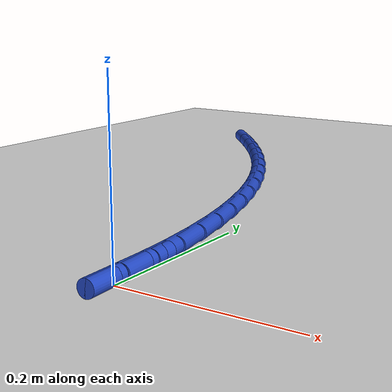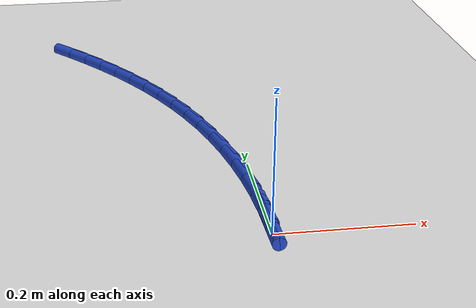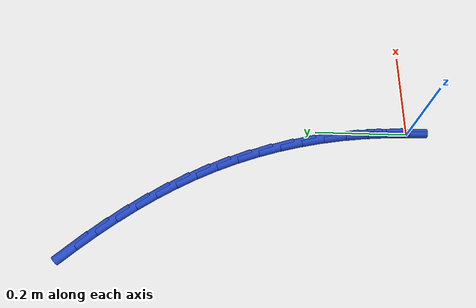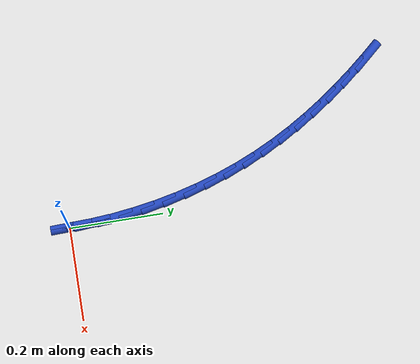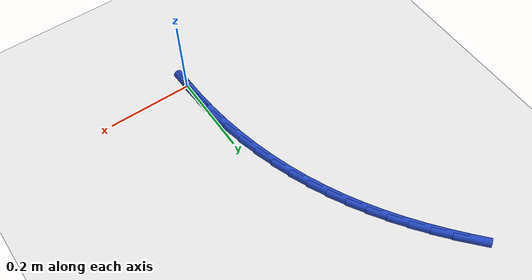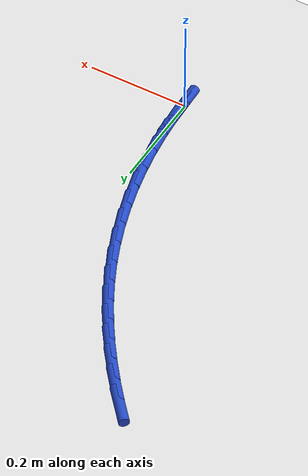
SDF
<sdf version="1.6">
 <world name="default">
  <model name="ground_plane">
   <static>1</static>
   <link name="link">
    <collision name="collision">
     <geometry><plane><normal>0 0 1</normal><size>100 100</size></plane></geometry>
     <surface><friction><ode><mu>100</mu><mu2>50</mu2></ode></friction></surface>
    </collision>
    <visual name="visual">
     <cast_shadows>0</cast_shadows>
     <geometry><plane><normal>0 0 1</normal><size>100 100</size></plane></geometry>
     <material>
      <script><uri>file://media/materials/scripts/gazebo.material</uri><name>Gazebo/WhiteGlow</name></script>
     </material>
    </visual>
   </link>
  </model>
  <model name="line">
   <link name="link_0">
    <pose>1.214306433183765e-17 -1.3877787807814457e-17 0.01 0 1.57 -1.537332562540502</pose>
    <collision name="collision">
     <geometry><cylinder><radius>0.01</radius><length>0.08</length></cylinder></geometry>
    </collision>
    <visual name="visual">
     <material>
      <script><name>Gazebo/Blue</name><uri>file://media/materials/scripts/gazebo.material</uri></script>
     </material>
     <geometry><cylinder><radius>0.01</radius><length>0.08</length></cylinder></geometry>
    </visual>
   </link>
   <link name="link_1">
    <pose>-0.0016422306877398084 0.04905657434838483 0.01 0 1.57 -1.4911456338027516</pose>
    <collision name="collision">
     <geometry><cylinder><radius>0.01</radius><length>0.08</length></cylinder></geometry>
    </collision>
    <visual name="visual">
     <material>
      <script><name>Gazebo/Blue</name><uri>file://media/materials/scripts/gazebo.material</uri></script>
     </material>
     <geometry><cylinder><radius>0.01</radius><length>0.08</length></cylinder></geometry>
    </visual>
   </link>
   <link name="link_2">
    <pose>-0.005535999918573262 0.09783871639620474 0.01 0 1.57 -1.445310106959644</pose>
    <collision name="collision">
     <geometry><cylinder><radius>0.01</radius><length>0.08</length></cylinder></geometry>
    </collision>
    <visual name="visual">
     <material>
      <script><name>Gazebo/Blue</name><uri>file://media/materials/scripts/gazebo.material</uri></script>
     </material>
     <geometry><cylinder><radius>0.01</radius><length>0.08</length></cylinder></geometry>
    </visual>
   </link>
   <link name="link_3">
    <pose>-0.011636482450962628 0.14619803318886382 0.01 0 1.57 -1.3995928769485018</pose>
    <collision name="collision">
     <geometry><cylinder><radius>0.01</radius><length>0.08</length></cylinder></geometry>
    </collision>
    <visual name="visual">
     <material>
      <script><name>Gazebo/Blue</name><uri>file://media/materials/scripts/gazebo.material</uri></script>
     </material>
     <geometry><cylinder><radius>0.01</radius><length>0.08</length></cylinder></geometry>
    </visual>
   </link>
   <link name="link_4">
    <pose>-0.01989885304337018 0.19398613177176616 0.01 0 1.57 -1.3537522992703988</pose>
    <collision name="collision">
     <geometry><cylinder><radius>0.01</radius><length>0.08</length></cylinder></geometry>
    </collision>
    <visual name="visual">
     <material>
      <script><name>Gazebo/Blue</name><uri>file://media/materials/scripts/gazebo.material</uri></script>
     </material>
     <geometry><cylinder><radius>0.01</radius><length>0.08</length></cylinder></geometry>
    </visual>
   </link>
   <link name="link_5">
    <pose>-0.030278286454258174 0.2410546191903157 0.01 0 1.57 -1.307537648069753</pose>
    <collision name="collision">
     <geometry><cylinder><radius>0.01</radius><length>0.08</length></cylinder></geometry>
    </collision>
    <visual name="visual">
     <material>
      <script><name>Gazebo/Blue</name><uri>file://media/materials/scripts/gazebo.material</uri></script>
     </material>
     <geometry><cylinder><radius>0.01</radius><length>0.08</length></cylinder></geometry>
    </visual>
   </link>
   <link name="link_6">
    <pose>-0.042729957442088906 0.28725510248991665 0.01 0 1.57 -1.2606883885619955</pose>
    <collision name="collision">
     <geometry><cylinder><radius>0.01</radius><length>0.08</length></cylinder></geometry>
    </collision>
    <visual name="visual">
     <material>
      <script><name>Gazebo/Blue</name><uri>file://media/materials/scripts/gazebo.material</uri></script>
     </material>
     <geometry><cylinder><radius>0.01</radius><length>0.08</length></cylinder></geometry>
    </visual>
   </link>
   <link name="link_7">
    <pose>-0.05720904076532463 0.3324391887159729 0.01 0 1.57 -1.2129334757176156</pose>
    <collision name="collision">
     <geometry><cylinder><radius>0.01</radius><length>0.08</length></cylinder></geometry>
    </collision>
    <visual name="visual">
     <material>
      <script><name>Gazebo/Blue</name><uri>file://media/materials/scripts/gazebo.material</uri></script>
     </material>
     <geometry><cylinder><radius>0.01</radius><length>0.08</length></cylinder></geometry>
    </visual>
   </link>
   <link name="link_8">
    <pose>-0.07367071118242763 0.37645848491388867 0.01 0 1.57 -1.1640035975350842</pose>
    <collision name="collision">
     <geometry><cylinder><radius>0.01</radius><length>0.08</length></cylinder></geometry>
    </collision>
    <visual name="visual">
     <material>
      <script><name>Gazebo/Blue</name><uri>file://media/materials/scripts/gazebo.material</uri></script>
     </material>
     <geometry><cylinder><radius>0.01</radius><length>0.08</length></cylinder></geometry>
    </visual>
   </link>
   <link name="link_9">
    <pose>-0.09207000188835714 0.4191657574125525 0.01 0 1.57 -1.1147331889079957</pose>
    <collision name="collision">
     <geometry><cylinder><radius>0.01</radius><length>0.08</length></cylinder></geometry>
    </collision>
    <visual name="visual">
     <material>
      <script><name>Gazebo/Blue</name><uri>file://media/materials/scripts/gazebo.material</uri></script>
     </material>
     <geometry><cylinder><radius>0.01</radius><length>0.08</length></cylinder></geometry>
    </visual>
   </link>
   <link name="link_10">
    <pose>-0.11235048113957313 0.4605076605386113 0.01 0 1.57 -1.0672085268057987</pose>
    <collision name="collision">
     <geometry><cylinder><radius>0.01</radius><length>0.08</length></cylinder></geometry>
    </collision>
    <visual name="visual">
     <material>
      <script><name>Gazebo/Blue</name><uri>file://media/materials/scripts/gazebo.material</uri></script>
     </material>
     <geometry><cylinder><radius>0.01</radius><length>0.08</length></cylinder></geometry>
    </visual>
   </link>
   <link name="link_11">
    <pose>-0.13443598775151117 0.5005924157928237 0.01 0 1.57 -1.0220870463493974</pose>
    <collision name="collision">
     <geometry><cylinder><radius>0.01</radius><length>0.08</length></cylinder></geometry>
    </collision>
    <visual name="visual">
     <material>
      <script><name>Gazebo/Blue</name><uri>file://media/materials/scripts/gazebo.material</uri></script>
     </material>
     <geometry><cylinder><radius>0.01</radius><length>0.08</length></cylinder></geometry>
    </visual>
   </link>
   <link name="link_12">
    <pose>-0.15824841181752827 0.5395442030357892 0.01 0 1.57 -0.9797728386964492</pose>
    <collision name="collision">
     <geometry><cylinder><radius>0.01</radius><length>0.08</length></cylinder></geometry>
    </collision>
    <visual name="visual">
     <material>
      <script><name>Gazebo/Blue</name><uri>file://media/materials/scripts/gazebo.material</uri></script>
     </material>
     <geometry><cylinder><radius>0.01</radius><length>0.08</length></cylinder></geometry>
    </visual>
   </link>
   <link name="link_13">
    <pose>-0.18370964343098145 0.5774872021281077 0.01 0 1.57 -0.9405829895709513</pose>
    <collision name="collision">
     <geometry><cylinder><radius>0.01</radius><length>0.08</length></cylinder></geometry>
    </collision>
    <visual name="visual">
     <material>
      <script><name>Gazebo/Blue</name><uri>file://media/materials/scripts/gazebo.material</uri></script>
     </material>
     <geometry><cylinder><radius>0.01</radius><length>0.08</length></cylinder></geometry>
    </visual>
   </link>
   <link name="link_14">
    <pose>-0.21074157268522775 0.6145455929303787 0.01 0 1.57 -0.9047472154058953</pose>
    <collision name="collision">
     <geometry><cylinder><radius>0.01</radius><length>0.08</length></cylinder></geometry>
    </collision>
    <visual name="visual">
     <material>
      <script><name>Gazebo/Blue</name><uri>file://media/materials/scripts/gazebo.material</uri></script>
     </material>
     <geometry><cylinder><radius>0.01</radius><length>0.08</length></cylinder></geometry>
    </visual>
   </link>
   <link name="link_15">
    <pose>-0.23926608967362428 0.6508435553032024 0.01 0 1.57 -0.8724135066609254</pose>
    <collision name="collision">
     <geometry><cylinder><radius>0.01</radius><length>0.08</length></cylinder></geometry>
    </collision>
    <visual name="visual">
     <material>
      <script><name>Gazebo/Blue</name><uri>file://media/materials/scripts/gazebo.material</uri></script>
     </material>
     <geometry><cylinder><radius>0.01</radius><length>0.08</length></cylinder></geometry>
    </visual>
   </link>
   <link name="link_16">
    <pose>-0.26920508448952807 0.6865052691071781 0.01 0 1.57 -0.8436578181014758</pose>
    <collision name="collision">
     <geometry><cylinder><radius>0.01</radius><length>0.08</length></cylinder></geometry>
    </collision>
    <visual name="visual">
     <material>
      <script><name>Gazebo/Blue</name><uri>file://media/materials/scripts/gazebo.material</uri></script>
     </material>
     <geometry><cylinder><radius>0.01</radius><length>0.08</length></cylinder></geometry>
    </visual>
   </link>
   <link name="link_150">
    <pose>1.0408340855860843e-17 -1.3877787807814457e-17 0.01 0 1.57 -1.5372879267654134</pose>
    <collision name="collision">
     <geometry><cylinder><radius>0.01</radius><length>0.08</length></cylinder></geometry>
    </collision>
    <visual name="visual">
     <material>
      <script><name>Gazebo/Blue</name><uri>file://media/materials/scripts/gazebo.material</uri></script>
     </material>
     <geometry><cylinder><radius>0.01</radius><length>0.08</length></cylinder></geometry>
    </visual>
   </link>
   <link name="link_151">
    <pose>-0.0016439375075597371 0.04904209636949889 0.01 0 1.57 -1.5372879267654134</pose>
    <collision name="collision">
     <geometry><cylinder><radius>0.01</radius><length>0.08</length></cylinder></geometry>
    </collision>
    <visual name="visual">
     <material>
      <script><name>Gazebo/Blue</name><uri>file://media/materials/scripts/gazebo.material</uri></script>
     </material>
     <geometry><cylinder><radius>0.01</radius><length>0.08</length></cylinder></geometry>
    </visual>
   </link>
  </model>
 </world>
</sdf>
